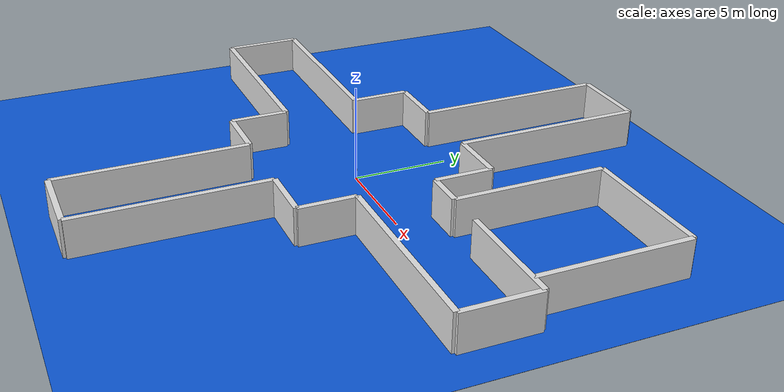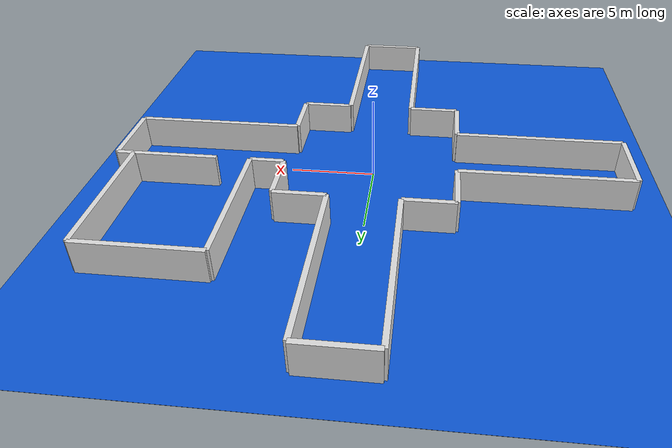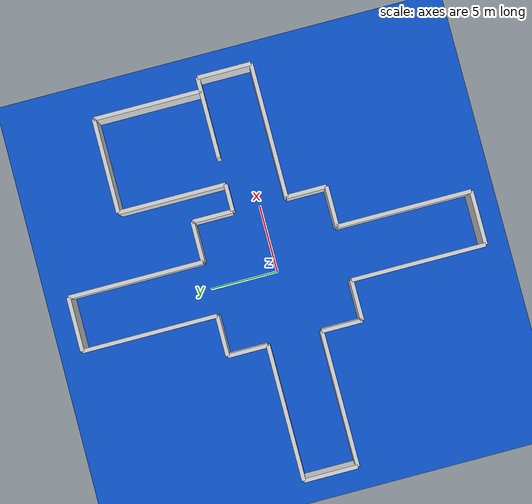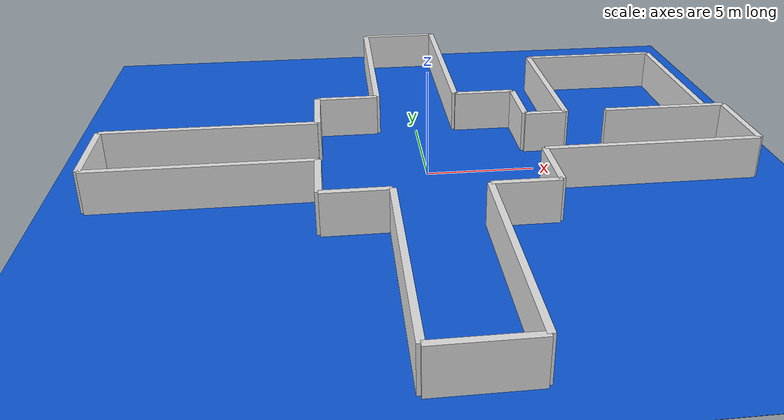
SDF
<?xml version="1.0" ?>
<sdf version="1.8">
  <world name="proxy_map">

    <physics name="default" type="ode">
      <max_step_size>0.01</max_step_size>
      <real_time_factor>1.0</real_time_factor>
      <ode>
        <solver>
          <type>quick</type>
          <iters>50</iters>
          <sor>1.3</sor>
        </solver>
        <constraints>
          <cfm>0.0001</cfm>
          <erp>0.2</erp>
          <contact_max_correcting_vel>100</contact_max_correcting_vel>
          <contact_surface_layer>0.001</contact_surface_layer>
        </constraints>
      </ode>
    </physics>

    <plugin filename="libignition-gazebo-physics-system.so"
            name="ignition::gazebo::systems::Physics"/>
    <plugin filename="libignition-gazebo-user-commands-system.so"
            name="ignition::gazebo::systems::UserCommands"/>
    <plugin filename="libignition-gazebo-scene-broadcaster-system.so"
            name="ignition::gazebo::systems::SceneBroadcaster"/>
    <plugin filename="libignition-gazebo-sensors-system.so"
            name="ignition::gazebo::systems::Sensors">
      <render_engine>ogre2</render_engine>
    </plugin>
    <plugin filename="libignition-gazebo-contact-system.so"
            name="ignition::gazebo::systems::Contact"/>

    <light type="directional" name="sun">
      <cast_shadows>true</cast_shadows>
      <pose>0 0 10 0 0 0</pose>
      <diffuse>0.9 0.9 0.9 1</diffuse>
      <specular>0.3 0.3 0.3 1</specular>
      <attenuation>
        <range>1000</range><constant>0.9</constant>
        <linear>0.01</linear><quadratic>0.001</quadratic>
      </attenuation>
      <direction>-0.5 0.1 -0.9</direction>
    </light>

    <!-- Floor: thin box (plane ignores material in Ignition renderer)
         Frictionless (mu=0) + min_depth=0.001 prevents degenerate LCP constraints -->
    <model name="ground_plane">
      <static>true</static>
      <pose>0 0 -0.005 0 0 0</pose>
      <link name="link">
        <collision name="floor_col">
          <geometry><box><size>200 200 0.01</size></box></geometry>
          <surface>
            <friction><ode><mu>0</mu><mu2>0</mu2></ode></friction>
            <contact><ode><min_depth>0.001</min_depth></ode></contact>
          </surface>
        </collision>
        <visual name="vis">
          <geometry><box><size>200 200 0.01</size></box></geometry>
          <material>
            <ambient>0.05 0.35 0.85 1</ambient>
            <diffuse>0.05 0.35 0.85 1</diffuse>
            <specular>0.08 0.08 0.08 1</specular>
            <pbr>
              <metal>
                <albedo>0.05 0.35 0.85 1</albedo>
                <metalness>0.0</metalness>
                <roughness>0.9</roughness>
              </metal>
            </pbr>
          </material>
        </visual>
      </link>
    </model>

    <model name="hub_n_left">
      <static>true</static>
      <pose>-3.5 5.0 1.01 0 0 0</pose>
      <link name="link">
        <collision name="col">
          <geometry><box><size>3.0 0.3 2.0</size></box></geometry>
        </collision>
        <visual name="vis">
          <geometry><box><size>3.0 0.3 2.0</size></box></geometry>
          <material>
            <ambient>0.88 0.88 0.88 1</ambient>
            <diffuse>0.88 0.88 0.88 1</diffuse>
            <specular>0.05 0.05 0.05 1</specular>
          </material>
        </visual>
      </link>
    </model>
    <model name="hub_n_right">
      <static>true</static>
      <pose>3.5 5.0 1.01 0 0 0</pose>
      <link name="link">
        <collision name="col">
          <geometry><box><size>3.0 0.3 2.0</size></box></geometry>
        </collision>
        <visual name="vis">
          <geometry><box><size>3.0 0.3 2.0</size></box></geometry>
          <material>
            <ambient>0.88 0.88 0.88 1</ambient>
            <diffuse>0.88 0.88 0.88 1</diffuse>
            <specular>0.05 0.05 0.05 1</specular>
          </material>
        </visual>
      </link>
    </model>
    <model name="hub_s_left">
      <static>true</static>
      <pose>-3.5 -5.0 1.01 0 0 0</pose>
      <link name="link">
        <collision name="col">
          <geometry><box><size>3.0 0.3 2.0</size></box></geometry>
        </collision>
        <visual name="vis">
          <geometry><box><size>3.0 0.3 2.0</size></box></geometry>
          <material>
            <ambient>0.88 0.88 0.88 1</ambient>
            <diffuse>0.88 0.88 0.88 1</diffuse>
            <specular>0.05 0.05 0.05 1</specular>
          </material>
        </visual>
      </link>
    </model>
    <model name="hub_s_right">
      <static>true</static>
      <pose>3.5 -5.0 1.01 0 0 0</pose>
      <link name="link">
        <collision name="col">
          <geometry><box><size>3.0 0.3 2.0</size></box></geometry>
        </collision>
        <visual name="vis">
          <geometry><box><size>3.0 0.3 2.0</size></box></geometry>
          <material>
            <ambient>0.88 0.88 0.88 1</ambient>
            <diffuse>0.88 0.88 0.88 1</diffuse>
            <specular>0.05 0.05 0.05 1</specular>
          </material>
        </visual>
      </link>
    </model>
    <model name="hub_e_top">
      <static>true</static>
      <pose>5.0 3.5 1.01 0 0 0</pose>
      <link name="link">
        <collision name="col">
          <geometry><box><size>0.3 3.0 2.0</size></box></geometry>
        </collision>
        <visual name="vis">
          <geometry><box><size>0.3 3.0 2.0</size></box></geometry>
          <material>
            <ambient>0.88 0.88 0.88 1</ambient>
            <diffuse>0.88 0.88 0.88 1</diffuse>
            <specular>0.05 0.05 0.05 1</specular>
          </material>
        </visual>
      </link>
    </model>
    <model name="hub_e_bot">
      <static>true</static>
      <pose>5.0 -3.5 1.01 0 0 0</pose>
      <link name="link">
        <collision name="col">
          <geometry><box><size>0.3 3.0 2.0</size></box></geometry>
        </collision>
        <visual name="vis">
          <geometry><box><size>0.3 3.0 2.0</size></box></geometry>
          <material>
            <ambient>0.88 0.88 0.88 1</ambient>
            <diffuse>0.88 0.88 0.88 1</diffuse>
            <specular>0.05 0.05 0.05 1</specular>
          </material>
        </visual>
      </link>
    </model>
    <model name="hub_w_top">
      <static>true</static>
      <pose>-5.0 3.5 1.01 0 0 0</pose>
      <link name="link">
        <collision name="col">
          <geometry><box><size>0.3 3.0 2.0</size></box></geometry>
        </collision>
        <visual name="vis">
          <geometry><box><size>0.3 3.0 2.0</size></box></geometry>
          <material>
            <ambient>0.88 0.88 0.88 1</ambient>
            <diffuse>0.88 0.88 0.88 1</diffuse>
            <specular>0.05 0.05 0.05 1</specular>
          </material>
        </visual>
      </link>
    </model>
    <model name="hub_w_bot">
      <static>true</static>
      <pose>-5.0 -3.5 1.01 0 0 0</pose>
      <link name="link">
        <collision name="col">
          <geometry><box><size>0.3 3.0 2.0</size></box></geometry>
        </collision>
        <visual name="vis">
          <geometry><box><size>0.3 3.0 2.0</size></box></geometry>
          <material>
            <ambient>0.88 0.88 0.88 1</ambient>
            <diffuse>0.88 0.88 0.88 1</diffuse>
            <specular>0.05 0.05 0.05 1</specular>
          </material>
        </visual>
      </link>
    </model>
    <model name="corr_n_left">
      <static>true</static>
      <pose>-2.0 10.0 1.01 0 0 0</pose>
      <link name="link">
        <collision name="col">
          <geometry><box><size>0.3 10.0 2.0</size></box></geometry>
        </collision>
        <visual name="vis">
          <geometry><box><size>0.3 10.0 2.0</size></box></geometry>
          <material>
            <ambient>0.88 0.88 0.88 1</ambient>
            <diffuse>0.88 0.88 0.88 1</diffuse>
            <specular>0.05 0.05 0.05 1</specular>
          </material>
        </visual>
      </link>
    </model>
    <model name="corr_n_right">
      <static>true</static>
      <pose>2.0 10.0 1.01 0 0 0</pose>
      <link name="link">
        <collision name="col">
          <geometry><box><size>0.3 10.0 2.0</size></box></geometry>
        </collision>
        <visual name="vis">
          <geometry><box><size>0.3 10.0 2.0</size></box></geometry>
          <material>
            <ambient>0.88 0.88 0.88 1</ambient>
            <diffuse>0.88 0.88 0.88 1</diffuse>
            <specular>0.05 0.05 0.05 1</specular>
          </material>
        </visual>
      </link>
    </model>
    <model name="corr_n_end">
      <static>true</static>
      <pose>0.0 15.0 1.01 0 0 0</pose>
      <link name="link">
        <collision name="col">
          <geometry><box><size>4.0 0.3 2.0</size></box></geometry>
        </collision>
        <visual name="vis">
          <geometry><box><size>4.0 0.3 2.0</size></box></geometry>
          <material>
            <ambient>0.88 0.88 0.88 1</ambient>
            <diffuse>0.88 0.88 0.88 1</diffuse>
            <specular>0.05 0.05 0.05 1</specular>
          </material>
        </visual>
      </link>
    </model>
    <model name="corr_s_left">
      <static>true</static>
      <pose>-2.0 -10.0 1.01 0 0 0</pose>
      <link name="link">
        <collision name="col">
          <geometry><box><size>0.3 10.0 2.0</size></box></geometry>
        </collision>
        <visual name="vis">
          <geometry><box><size>0.3 10.0 2.0</size></box></geometry>
          <material>
            <ambient>0.88 0.88 0.88 1</ambient>
            <diffuse>0.88 0.88 0.88 1</diffuse>
            <specular>0.05 0.05 0.05 1</specular>
          </material>
        </visual>
      </link>
    </model>
    <model name="corr_s_right">
      <static>true</static>
      <pose>2.0 -10.0 1.01 0 0 0</pose>
      <link name="link">
        <collision name="col">
          <geometry><box><size>0.3 10.0 2.0</size></box></geometry>
        </collision>
        <visual name="vis">
          <geometry><box><size>0.3 10.0 2.0</size></box></geometry>
          <material>
            <ambient>0.88 0.88 0.88 1</ambient>
            <diffuse>0.88 0.88 0.88 1</diffuse>
            <specular>0.05 0.05 0.05 1</specular>
          </material>
        </visual>
      </link>
    </model>
    <model name="corr_s_end">
      <static>true</static>
      <pose>0.0 -15.0 1.01 0 0 0</pose>
      <link name="link">
        <collision name="col">
          <geometry><box><size>4.0 0.3 2.0</size></box></geometry>
        </collision>
        <visual name="vis">
          <geometry><box><size>4.0 0.3 2.0</size></box></geometry>
          <material>
            <ambient>0.88 0.88 0.88 1</ambient>
            <diffuse>0.88 0.88 0.88 1</diffuse>
            <specular>0.05 0.05 0.05 1</specular>
          </material>
        </visual>
      </link>
    </model>
    <model name="corr_e_bot">
      <static>true</static>
      <pose>10.0 -2.0 1.01 0 0 0</pose>
      <link name="link">
        <collision name="col">
          <geometry><box><size>10.0 0.3 2.0</size></box></geometry>
        </collision>
        <visual name="vis">
          <geometry><box><size>10.0 0.3 2.0</size></box></geometry>
          <material>
            <ambient>0.88 0.88 0.88 1</ambient>
            <diffuse>0.88 0.88 0.88 1</diffuse>
            <specular>0.05 0.05 0.05 1</specular>
          </material>
        </visual>
      </link>
    </model>
    <model name="corr_e_top_1">
      <static>true</static>
      <pose>6.0 2.0 1.01 0 0 0</pose>
      <link name="link">
        <collision name="col">
          <geometry><box><size>2.0 0.3 2.0</size></box></geometry>
        </collision>
        <visual name="vis">
          <geometry><box><size>2.0 0.3 2.0</size></box></geometry>
          <material>
            <ambient>0.88 0.88 0.88 1</ambient>
            <diffuse>0.88 0.88 0.88 1</diffuse>
            <specular>0.05 0.05 0.05 1</specular>
          </material>
        </visual>
      </link>
    </model>
    <model name="corr_e_top_2">
      <static>true</static>
      <pose>12.0 2.0 1.01 0 0 0</pose>
      <link name="link">
        <collision name="col">
          <geometry><box><size>6.0 0.3 2.0</size></box></geometry>
        </collision>
        <visual name="vis">
          <geometry><box><size>6.0 0.3 2.0</size></box></geometry>
          <material>
            <ambient>0.88 0.88 0.88 1</ambient>
            <diffuse>0.88 0.88 0.88 1</diffuse>
            <specular>0.05 0.05 0.05 1</specular>
          </material>
        </visual>
      </link>
    </model>
    <model name="corr_e_end">
      <static>true</static>
      <pose>15.0 0.0 1.01 0 0 0</pose>
      <link name="link">
        <collision name="col">
          <geometry><box><size>0.3 4.0 2.0</size></box></geometry>
        </collision>
        <visual name="vis">
          <geometry><box><size>0.3 4.0 2.0</size></box></geometry>
          <material>
            <ambient>0.88 0.88 0.88 1</ambient>
            <diffuse>0.88 0.88 0.88 1</diffuse>
            <specular>0.05 0.05 0.05 1</specular>
          </material>
        </visual>
      </link>
    </model>
    <model name="corr_w_top">
      <static>true</static>
      <pose>-10.0 2.0 1.01 0 0 0</pose>
      <link name="link">
        <collision name="col">
          <geometry><box><size>10.0 0.3 2.0</size></box></geometry>
        </collision>
        <visual name="vis">
          <geometry><box><size>10.0 0.3 2.0</size></box></geometry>
          <material>
            <ambient>0.88 0.88 0.88 1</ambient>
            <diffuse>0.88 0.88 0.88 1</diffuse>
            <specular>0.05 0.05 0.05 1</specular>
          </material>
        </visual>
      </link>
    </model>
    <model name="corr_w_bot">
      <static>true</static>
      <pose>-10.0 -2.0 1.01 0 0 0</pose>
      <link name="link">
        <collision name="col">
          <geometry><box><size>10.0 0.3 2.0</size></box></geometry>
        </collision>
        <visual name="vis">
          <geometry><box><size>10.0 0.3 2.0</size></box></geometry>
          <material>
            <ambient>0.88 0.88 0.88 1</ambient>
            <diffuse>0.88 0.88 0.88 1</diffuse>
            <specular>0.05 0.05 0.05 1</specular>
          </material>
        </visual>
      </link>
    </model>
    <model name="corr_w_end">
      <static>true</static>
      <pose>-15.0 0.0 1.01 0 0 0</pose>
      <link name="link">
        <collision name="col">
          <geometry><box><size>0.3 4.0 2.0</size></box></geometry>
        </collision>
        <visual name="vis">
          <geometry><box><size>0.3 4.0 2.0</size></box></geometry>
          <material>
            <ambient>0.88 0.88 0.88 1</ambient>
            <diffuse>0.88 0.88 0.88 1</diffuse>
            <specular>0.05 0.05 0.05 1</specular>
          </material>
        </visual>
      </link>
    </model>
    <model name="room_w">
      <static>true</static>
      <pose>7.0 6.0 1.01 0 0 0</pose>
      <link name="link">
        <collision name="col">
          <geometry><box><size>0.3 8.0 2.0</size></box></geometry>
        </collision>
        <visual name="vis">
          <geometry><box><size>0.3 8.0 2.0</size></box></geometry>
          <material>
            <ambient>0.88 0.88 0.88 1</ambient>
            <diffuse>0.88 0.88 0.88 1</diffuse>
            <specular>0.05 0.05 0.05 1</specular>
          </material>
        </visual>
      </link>
    </model>
    <model name="room_e">
      <static>true</static>
      <pose>14.0 6.0 1.01 0 0 0</pose>
      <link name="link">
        <collision name="col">
          <geometry><box><size>0.3 8.0 2.0</size></box></geometry>
        </collision>
        <visual name="vis">
          <geometry><box><size>0.3 8.0 2.0</size></box></geometry>
          <material>
            <ambient>0.88 0.88 0.88 1</ambient>
            <diffuse>0.88 0.88 0.88 1</diffuse>
            <specular>0.05 0.05 0.05 1</specular>
          </material>
        </visual>
      </link>
    </model>
    <model name="room_n">
      <static>true</static>
      <pose>10.5 10.0 1.01 0 0 0</pose>
      <link name="link">
        <collision name="col">
          <geometry><box><size>7.0 0.3 2.0</size></box></geometry>
        </collision>
        <visual name="vis">
          <geometry><box><size>7.0 0.3 2.0</size></box></geometry>
          <material>
            <ambient>0.88 0.88 0.88 1</ambient>
            <diffuse>0.88 0.88 0.88 1</diffuse>
            <specular>0.05 0.05 0.05 1</specular>
          </material>
        </visual>
      </link>
    </model>

    <!-- 2D LiDAR for sensor validation -->
    <model name="lidar_sensor">
      <static>true</static>
      <pose>0 0 0.5 0 0 0</pose>
      <link name="link">
        <visual name="vis">
          <geometry><cylinder><radius>0.05</radius><length>0.1</length></cylinder></geometry>
          <material><ambient>1 0.2 0.2 1</ambient><diffuse>1 0.2 0.2 1</diffuse></material>
        </visual>
        <sensor name="lidar" type="gpu_lidar">
          <always_on>true</always_on>
          <update_rate>10</update_rate>
          <topic>/scan</topic>
          <ray>
            <scan>
              <horizontal>
                <samples>360</samples>
                <resolution>1</resolution>
                <min_angle>-3.14159</min_angle>
                <max_angle>3.14159</max_angle>
              </horizontal>
            </scan>
            <range>
              <min>0.12</min>
              <max>20.0</max>
              <resolution>0.01</resolution>
            </range>
          </ray>

        </sensor>
      </link>
    </model>

  </world>
</sdf>
